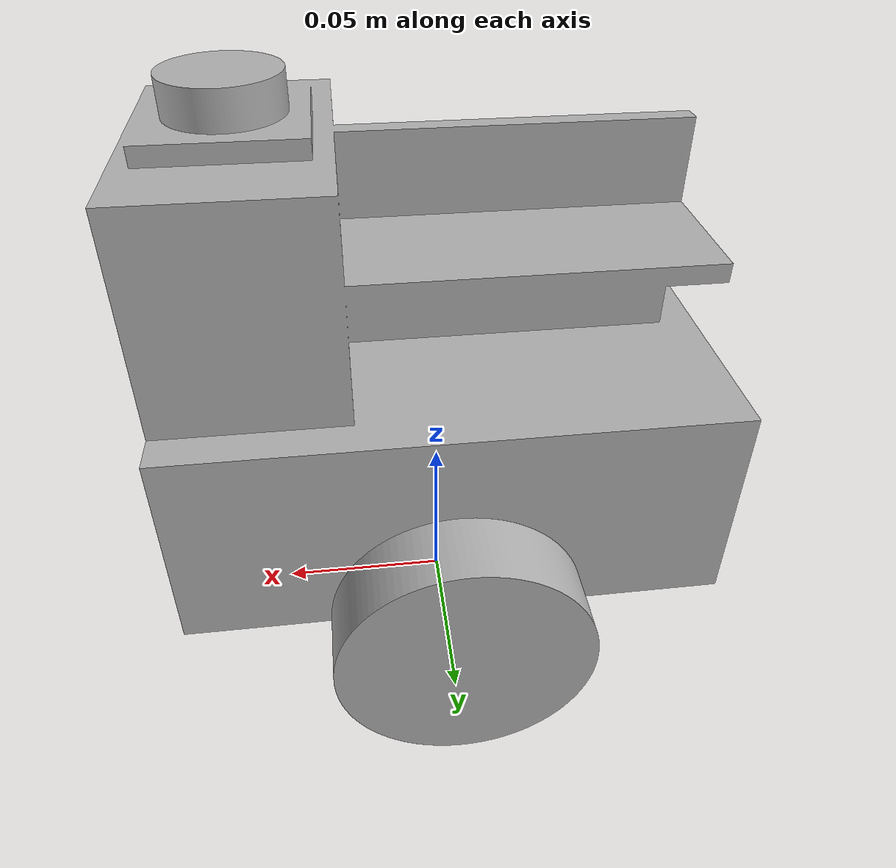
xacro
<?xml version="1.0" ?>
<robot name="final_1100427" xmlns:xacro="http://www.ros.org/wiki/xacro">

<xacro:include filename="$(find final_1100427_description)/urdf/materials.xacro" />
<xacro:include filename="$(find final_1100427_description)/urdf/final_1100427.trans" />
<xacro:include filename="$(find final_1100427_description)/urdf/final_1100427.gazebo" />
<link name="base_link">
  <inertial>
    <origin xyz="0.012037647793185804 0.0 0.08363645680242557" rpy="0 0 0"/>
    <mass value="0.45117701508715086"/>
    <inertia ixx="0.001067" iyy="0.001565" izz="0.001338" ixy="-0.0" iyz="0.0" ixz="-0.000177"/>
  </inertial>
  <visual>
    <origin xyz="0 0 0" rpy="0 0 0"/>
    <geometry>
      <mesh filename="package://final_1100427_description/meshes/base_link.stl" scale="0.001 0.001 0.001"/>
    </geometry>
    <material name="silver"/>
  </visual>
  <collision>
    <origin xyz="0 0 0" rpy="0 0 0"/>
    <geometry>
      <mesh filename="package://final_1100427_description/meshes/base_link.stl" scale="0.001 0.001 0.001"/>
    </geometry>
  </collision>
</link>

<link name="right_wheel_1">
  <inertial>
    <origin xyz="0.0 -0.009999999999999995 -6.938893903907228e-18" rpy="0 0 0"/>
    <mass value="0.04187114688704476"/>
    <inertia ixx="1.4e-05" iyy="2.6e-05" izz="1.4e-05" ixy="0.0" iyz="-0.0" ixz="0.0"/>
  </inertial>
  <visual>
    <origin xyz="-0.0 0.05 -0.035" rpy="0 0 0"/>
    <geometry>
      <mesh filename="package://final_1100427_description/meshes/right_wheel_1.stl" scale="0.001 0.001 0.001"/>
    </geometry>
    <material name="silver"/>
  </visual>
  <collision>
    <origin xyz="-0.0 0.05 -0.035" rpy="0 0 0"/>
    <geometry>
      <mesh filename="package://final_1100427_description/meshes/right_wheel_1.stl" scale="0.001 0.001 0.001"/>
    </geometry>
  </collision>
</link>

<link name="left_wheel_1">
  <inertial>
    <origin xyz="7.385233546074017e-18 0.010000000000000009 0.0" rpy="0 0 0"/>
    <mass value="0.04187114688704476"/>
    <inertia ixx="1.4e-05" iyy="2.6e-05" izz="1.4e-05" ixy="0.0" iyz="0.0" ixz="-0.0"/>
  </inertial>
  <visual>
    <origin xyz="-0.0 -0.05 -0.035" rpy="0 0 0"/>
    <geometry>
      <mesh filename="package://final_1100427_description/meshes/left_wheel_1.stl" scale="0.001 0.001 0.001"/>
    </geometry>
    <material name="silver"/>
  </visual>
  <collision>
    <origin xyz="-0.0 -0.05 -0.035" rpy="0 0 0"/>
    <geometry>
      <mesh filename="package://final_1100427_description/meshes/left_wheel_1.stl" scale="0.001 0.001 0.001"/>
    </geometry>
  </collision>
</link>

<link name="lidar_1">
  <inertial>
    <origin xyz="0.0 0.0 0.0050000000000000044" rpy="0 0 0"/>
    <mass value="0.06043638867343363"/>
    <inertia ixx="4e-06" iyy="4e-06" izz="7e-06" ixy="-0.0" iyz="-0.0" ixz="-0.0"/>
  </inertial>
  <visual>
    <origin xyz="-0.05 -0.0 -0.16" rpy="0 0 0"/>
    <geometry>
      <mesh filename="package://final_1100427_description/meshes/lidar_1.stl" scale="0.001 0.001 0.001"/>
    </geometry>
    <material name="silver"/>
  </visual>
  <collision>
    <origin xyz="-0.05 -0.0 -0.16" rpy="0 0 0"/>
    <geometry>
      <mesh filename="package://final_1100427_description/meshes/lidar_1.stl" scale="0.001 0.001 0.001"/>
    </geometry>
  </collision>
</link>

<joint name="Revolute 1" type="continuous">
  <origin xyz="0.0 -0.05 0.035" rpy="0 0 0"/>
  <parent link="base_link"/>
  <child link="right_wheel_1"/>
  <axis xyz="0.0 1.0 0.0"/>
</joint>

<joint name="Revolute 2" type="continuous">
  <origin xyz="0.0 0.05 0.035" rpy="0 0 0"/>
  <parent link="base_link"/>
  <child link="left_wheel_1"/>
  <axis xyz="0.0 1.0 0.0"/>
</joint>

<joint name="Rigid 3" type="fixed">
  <origin xyz="0.05 0.0 0.16" rpy="0 0 0"/>
  <parent link="base_link"/>
  <child link="lidar_1"/>
</joint>

</robot>

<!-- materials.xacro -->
<robot name="final_1100427" xmlns:xacro="http://www.ros.org/wiki/xacro" >

<material name="silver">
  <color rgba="0.700 0.700 0.700 1.000"/>
</material>

</robot>

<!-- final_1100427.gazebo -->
<robot name="final_1100427" xmlns:xacro="http://www.ros.org/wiki/xacro" >

<xacro:property name="body_color" value="Gazebo/Silver" />

<gazebo>
  <plugin name="control" filename="libgazebo_ros_control.so"/>
</gazebo>
<gazebo reference="base_link">
  <material>${body_color}</material>
  <mu1>0.1</mu1>
  <mu2>0.1</mu2>
  <selfCollide>true</selfCollide>
  <gravity>true</gravity>
</gazebo>

<gazebo reference="right_wheel_1">
  <material>${body_color}</material>
  <mu1>1500</mu1>
  <mu2>1500</mu2>
  <selfCollide>true</selfCollide>
</gazebo>

<gazebo reference="left_wheel_1">
  <material>${body_color}</material>
  <mu1>1500</mu1>
  <mu2>1500</mu2>
  <selfCollide>true</selfCollide>
</gazebo>

<gazebo reference="lidar_1">
  <material>${body_color}</material>
  <mu1>0.2</mu1>
  <mu2>0.2</mu2>
  <selfCollide>true</selfCollide>
</gazebo>

<gazebo>
  <plugin name="differential_drive_controller" filename="libgazebo_ros_diff_drive.so">

    <!-- Plugin update rate in Hz -->
    <updateRate>100</updateRate>

    <!-- Name of left joint, defaults to `left_joint` -->
    <leftJoint>Revolute 2</leftJoint>

    <!-- Name of right joint, defaults to `right_joint` -->
    <rightJoint>Revolute 1</rightJoint>

    <!-- The distance from the center of one wheel to the other, in meters, defaults to 0.34 m -->
    <wheelSeparation>0.1</wheelSeparation>

    <!-- Diameter of the wheels, in meters, defaults to 0.15 m -->
    <wheelDiameter>0.07</wheelDiameter>

    <!-- Wheel acceleration, in rad/s^2, defaults to 0.0 rad/s^2 -->
    <wheelAcceleration>1.0</wheelAcceleration>

    <!-- Maximum torque which the wheels can produce, in Nm, defaults to 5 Nm -->
    <wheelTorque>50</wheelTorque>

    <!-- Topic to receive geometry_msgs/Twist message commands, defaults to `cmd_vel` -->
    <commandTopic>cmd_vel</commandTopic>

    <!-- Topic to publish nav_msgs/Odometry messages, defaults to `odom` -->
    <odometryTopic>odom</odometryTopic>

    <!-- Odometry frame, defaults to `odom` -->
    <odometryFrame>odom</odometryFrame>

    <!-- Robot frame to calculate odometry from, defaults to `base_footprint` -->
    <robotBaseFrame>base_link</robotBaseFrame>

    <!-- Odometry source, 0 for ENCODER, 1 for WORLD, defaults to WORLD -->
    <odometrySource>1</odometrySource>

    <!-- Set to true to publish transforms for the wheel links, defaults to false -->
    <publishWheelTF>true</publishWheelTF>

    <!-- Set to true to publish transforms for the odometry, defaults to true -->
    <publishOdom>true</publishOdom>

    <!-- Set to true to publish sensor_msgs/JointState on /joint_states for the wheel joints, defaults to false -->
    <publishWheelJointState>true</publishWheelJointState>

    <!-- Set to true to swap right and left wheels, defaults to true -->
    <legacyMode>false</legacyMode>
  </plugin>
</gazebo>

<!-- hokuyo -->
  <gazebo reference="lidar_1">
    <sensor type="ray" name="head_hokuyo_sensor">
      <pose>0 0 0 0 0 0</pose>
      <visualize>true</visualize>
      <update_rate>40</update_rate>
      <ray>
        <scan>
          <horizontal>
            <samples>720</samples>
            <resolution>1</resolution>
            <min_angle>-1.570796</min_angle>
            <max_angle>1.570796</max_angle>
          </horizontal>
        </scan>
        <range>
          <min>0.10</min>
          <max>30.0</max>
          <resolution>0.01</resolution>
        </range>
        <noise>
          <type>gaussian</type>
          <mean>0.0</mean>
          <stddev>0.01</stddev>
        </noise>
      </ray>
      <plugin name="gazebo_ros_head_hokuyo_controller" filename="libgazebo_ros_laser.so">
        <topicName>/scan</topicName>
        <frameName>lidar_1</frameName>
      </plugin>
    </sensor>
  </gazebo>

</robot>
